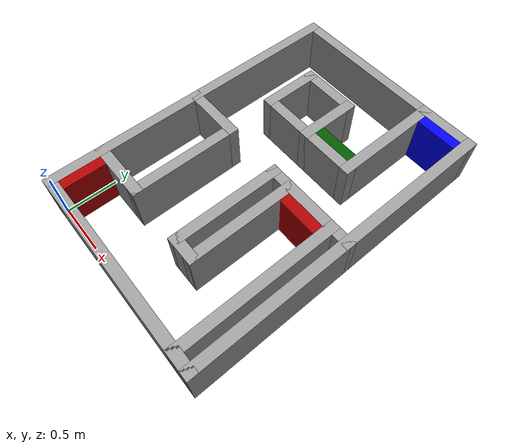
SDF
<?xml version='1.0'?>
<sdf version='1.6'>
  <model name='Bot_Map_1'>
    <pose frame=''>1 1.5 0 0 -0 0</pose>
    <link name='Wall_44'>
      <collision name='Wall_44_Collision'>
        <geometry>
          <box>
            <size>1.6 0.1 0.5</size>
          </box>
        </geometry>
        <pose frame=''>0 0 0.25 0 -0 0</pose>
      </collision>
      <visual name='Wall_44_Visual'>
        <pose frame=''>0 0 0.25 0 -0 0</pose>
        <geometry>
          <box>
            <size>1.6 0.1 0.5</size>
          </box>
        </geometry>
        <material>
          <script>
            <uri>file://media/materials/scripts/gazebo.material</uri>
            <name>Gazebo/Grey</name>
          </script>
          <ambient>0 0 0 1</ambient>
        </material>
        <meta>
          <layer>0</layer>
        </meta>
      </visual>
      <pose frame=''>-1 -0.75 0 0 -0 1.5708</pose>
    </link>
    <link name='Wall_50'>
      <collision name='Wall_50_Collision'>
        <geometry>
          <box>
            <size>0.625 0.1 0.5</size>
          </box>
        </geometry>
        <pose frame=''>0 0 0.25 0 -0 0</pose>
      </collision>
      <visual name='Wall_50_Visual'>
        <pose frame=''>0 0 0.25 0 -0 0</pose>
        <geometry>
          <box>
            <size>0.625 0.1 0.5</size>
          </box>
        </geometry>
        <material>
          <script>
            <uri>file://media/materials/scripts/gazebo.material</uri>
            <name>Gazebo/Grey</name>
          </script>
          <ambient>0 0 0 1</ambient>
        </material>
        <meta>
          <layer>0</layer>
        </meta>
      </visual>
      <pose frame=''>-0.7375 -1 0 0 -0 0</pose>
    </link>
    <link name='Wall_54'>
      <collision name='Wall_54_Collision'>
        <geometry>
          <box>
            <size>0.625 0.1 0.5</size>
          </box>
        </geometry>
        <pose frame=''>0 0 0.25 0 -0 0</pose>
      </collision>
      <visual name='Wall_54_Visual'>
        <pose frame=''>0 0 0.25 0 -0 0</pose>
        <geometry>
          <box>
            <size>0.625 0.1 0.5</size>
          </box>
        </geometry>
        <material>
          <script>
            <uri>file://media/materials/scripts/gazebo.material</uri>
            <name>Gazebo/Grey</name>
          </script>
          <ambient>0 0 0 1</ambient>
        </material>
        <meta>
          <layer>0</layer>
        </meta>
      </visual>
      <pose frame=''>-0.7375 0 0 0 -0 0</pose>
    </link>
    <link name='Wall_56'>
      <collision name='Wall_56_Collision'>
        <geometry>
          <box>
            <size>1.1 0.1 0.5</size>
          </box>
        </geometry>
        <pose frame=''>0 0 0.25 0 -0 0</pose>
      </collision>
      <visual name='Wall_56_Visual'>
        <pose frame=''>0 0 0.25 0 -0 0</pose>
        <geometry>
          <box>
            <size>1.1 0.1 0.5</size>
          </box>
        </geometry>
        <material>
          <script>
            <uri>file://media/materials/scripts/gazebo.material</uri>
            <name>Gazebo/Grey</name>
          </script>
          <ambient>0 0 0 1</ambient>
        </material>
        <meta>
          <layer>0</layer>
        </meta>
      </visual>
      <pose frame=''>-0.475 -0.5 0 0 -0 1.5708</pose>
    </link>
    <link name='Wall_58'>
      <collision name='Wall_58_Collision'>
        <geometry>
          <box>
            <size>2 0.1 0.5</size>
          </box>
        </geometry>
        <pose frame=''>0 0 0.25 0 -0 0</pose>
      </collision>
      <visual name='Wall_58_Visual'>
        <pose frame=''>0 0 0.25 0 -0 0</pose>
        <geometry>
          <box>
            <size>2 0.1 0.5</size>
          </box>
        </geometry>
        <material>
          <script>
            <uri>file://media/materials/scripts/gazebo.material</uri>
            <name>Gazebo/Grey</name>
          </script>
          <ambient>0 0 0 1</ambient>
        </material>
        <meta>
          <layer>0</layer>
        </meta>
      </visual>
      <pose frame=''>0.05 -1.5 0 0 -0 0</pose>
    </link>
    <link name='Wall_60'>
      <collision name='Wall_60_Collision'>
        <geometry>
          <box>
            <size>3.1 0.1 0.5</size>
          </box>
        </geometry>
        <pose frame=''>0 0 0.25 0 -0 0</pose>
      </collision>
      <visual name='Wall_60_Visual'>
        <pose frame=''>0 0 0.25 0 -0 0</pose>
        <geometry>
          <box>
            <size>3.1 0.1 0.5</size>
          </box>
        </geometry>
        <material>
          <script>
            <uri>file://media/materials/scripts/gazebo.material</uri>
            <name>Gazebo/Grey</name>
          </script>
          <ambient>0 0 0 1</ambient>
        </material>
        <meta>
          <layer>0</layer>
        </meta>
      </visual>
      <pose frame=''>1 0 0 0 -0 1.5708</pose>
    </link>
    <link name='Wall_62'>
      <collision name='Wall_62_Collision'>
        <geometry>
          <box>
            <size>1.6 0.1 0.5</size>
          </box>
        </geometry>
        <pose frame=''>0 0 0.25 0 -0 0</pose>
      </collision>
      <visual name='Wall_62_Visual'>
        <pose frame=''>0 0 0.25 0 -0 0</pose>
        <geometry>
          <box>
            <size>1.6 0.1 0.5</size>
          </box>
        </geometry>
        <material>
          <script>
            <uri>file://media/materials/scripts/gazebo.material</uri>
            <name>Gazebo/Grey</name>
          </script>
          <ambient>0 0 0 1</ambient>
        </material>
        <meta>
          <layer>0</layer>
        </meta>
      </visual>
      <pose frame=''>-1 0.75 0 0 -0 1.5708</pose>
    </link>
    <link name='Wall_64'>
      <collision name='Wall_64_Collision'>
        <geometry>
          <box>
            <size>2.1 0.1 0.5</size>
          </box>
        </geometry>
        <pose frame=''>0 0 0.25 0 -0 0</pose>
      </collision>
      <visual name='Wall_64_Visual'>
        <pose frame=''>0 0 0.25 0 -0 0</pose>
        <geometry>
          <box>
            <size>2.1 0.1 0.5</size>
          </box>
        </geometry>
        <material>
          <script>
            <uri>file://media/materials/scripts/gazebo.material</uri>
            <name>Gazebo/Grey</name>
          </script>
          <ambient>0 0 0 1</ambient>
        </material>
        <meta>
          <layer>0</layer>
        </meta>
      </visual>
      <pose frame=''>0 1.5 0 0 -0 0</pose>
    </link>
    <link name='Wall_66'>
      <collision name='Wall_66_Collision'>
        <geometry>
          <box>
            <size>1.1 0.1 0.5</size>
          </box>
        </geometry>
        <pose frame=''>0 0 0.25 0 -0 0</pose>
      </collision>
      <visual name='Wall_66_Visual'>
        <pose frame=''>0 0 0.25 0 -0 0</pose>
        <geometry>
          <box>
            <size>1.1 0.1 0.5</size>
          </box>
        </geometry>
        <material>
          <script>
            <uri>file://media/materials/scripts/gazebo.material</uri>
            <name>Gazebo/Grey</name>
          </script>
          <ambient>0 0 0 1</ambient>
        </material>
        <meta>
          <layer>0</layer>
        </meta>
      </visual>
      <pose frame=''>0.5 1 0 0 0 -1.5708</pose>
    </link>
    <link name='Wall_68'>
      <collision name='Wall_68_Collision'>
        <geometry>
          <box>
            <size>1.1 0.1 0.5</size>
          </box>
        </geometry>
        <pose frame=''>0 0 0.25 0 -0 0</pose>
      </collision>
      <visual name='Wall_68_Visual'>
        <pose frame=''>0 0 0.25 0 -0 0</pose>
        <geometry>
          <box>
            <size>1.1 0.1 0.5</size>
          </box>
        </geometry>
        <material>
          <script>
            <uri>file://media/materials/scripts/gazebo.material</uri>
            <name>Gazebo/Grey</name>
          </script>
          <ambient>0 0 0 1</ambient>
        </material>
        <meta>
          <layer>0</layer>
        </meta>
      </visual>
      <pose frame=''>0 0.5 0 0 -0 0</pose>
    </link>
    <link name='Wall_70'>
      <collision name='Wall_70_Collision'>
        <geometry>
          <box>
            <size>0.6 0.1 0.5</size>
          </box>
        </geometry>
        <pose frame=''>0 0 0.25 0 -0 0</pose>
      </collision>
      <visual name='Wall_70_Visual'>
        <pose frame=''>0 0 0.25 0 -0 0</pose>
        <geometry>
          <box>
            <size>0.6 0.1 0.5</size>
          </box>
        </geometry>
        <material>
          <script>
            <uri>file://media/materials/scripts/gazebo.material</uri>
            <name>Gazebo/Grey</name>
          </script>
          <ambient>0 0 0 1</ambient>
        </material>
        <meta>
          <layer>0</layer>
        </meta>
      </visual>
      <pose frame=''>-0.5 0.75 0 0 -0 1.5708</pose>
    </link>
    <link name='Wall_73'>
      <collision name='Wall_73_Collision'>
        <geometry>
          <box>
            <size>0.6 0.1 0.5</size>
          </box>
        </geometry>
        <pose frame=''>0 0 0.25 0 -0 0</pose>
      </collision>
      <visual name='Wall_73_Visual'>
        <pose frame=''>0 0 0.25 0 -0 0</pose>
        <geometry>
          <box>
            <size>0.6 0.1 0.5</size>
          </box>
        </geometry>
        <material>
          <script>
            <uri>file://media/materials/scripts/gazebo.material</uri>
            <name>Gazebo/Grey</name>
          </script>
          <ambient>0 0 0 1</ambient>
        </material>
        <meta>
          <layer>0</layer>
        </meta>
      </visual>
      <pose frame=''>-0.25 1 0 0 -0 0</pose>
    </link>
    <link name='Wall_75'>
      <collision name='Wall_75_Collision'>
        <geometry>
          <box>
            <size>0.6 0.1 0.5</size>
          </box>
        </geometry>
        <pose frame=''>0 0 0.25 0 -0 0</pose>
      </collision>
      <visual name='Wall_75_Visual'>
        <pose frame=''>0 0 0.25 0 -0 0</pose>
        <geometry>
          <box>
            <size>0.6 0.1 0.5</size>
          </box>
        </geometry>
        <material>
          <script>
            <uri>file://media/materials/scripts/gazebo.material</uri>
            <name>Gazebo/Grey</name>
          </script>
          <ambient>0 0 0 1</ambient>
        </material>
        <meta>
          <layer>0</layer>
        </meta>
      </visual>
      <pose frame=''>0 0.75 0 0 -0 1.5708</pose>
    </link>
    <link name='Wall_77'>
      <collision name='Wall_77_Collision'>
        <geometry>
          <box>
            <size>0.4 0.1 0.5</size>
          </box>
        </geometry>
        <pose frame=''>0 0 0.25 0 -0 0</pose>
      </collision>
      <visual name='Wall_77_Visual'>
        <pose frame=''>0 0 0.25 0 -0 0</pose>
        <geometry>
          <box>
            <size>0.4 0.1 0.5</size>
          </box>
        </geometry>
        <material>
          <script>
            <uri>file://media/materials/scripts/gazebo.material</uri>
            <name>Gazebo/Grey</name>
          </script>
          <ambient>0 0.333333 0 1</ambient>
        </material>
        <meta>
          <layer>0</layer>
        </meta>
      </visual>
      <pose frame=''>0.25 0.6 0 0 -0 0</pose>
    </link>
    <link name='Wall_79'>
      <collision name='Wall_79_Collision'>
        <geometry>
          <box>
            <size>0.975 0.1 0.5</size>
          </box>
        </geometry>
        <pose frame=''>0 0 0.25 0 -0 0</pose>
      </collision>
      <visual name='Wall_79_Visual'>
        <pose frame=''>0 0 0.25 0 -0 0</pose>
        <geometry>
          <box>
            <size>0.975 0.1 0.5</size>
          </box>
        </geometry>
        <material>
          <script>
            <uri>file://media/materials/scripts/gazebo.material</uri>
            <name>Gazebo/Grey</name>
          </script>
          <ambient>0 0 0 1</ambient>
        </material>
        <meta>
          <layer>0</layer>
        </meta>
      </visual>
      <pose frame=''>0.5625 0 0 0 -0 0</pose>
    </link>
    <link name='Wall_81'>
      <collision name='Wall_81_Collision'>
        <geometry>
          <box>
            <size>1.1 0.1 0.5</size>
          </box>
        </geometry>
        <pose frame=''>0 0 0.25 0 -0 0</pose>
      </collision>
      <visual name='Wall_81_Visual'>
        <pose frame=''>0 0 0.25 0 -0 0</pose>
        <geometry>
          <box>
            <size>1.1 0.1 0.5</size>
          </box>
        </geometry>
        <material>
          <script>
            <uri>file://media/materials/scripts/gazebo.material</uri>
            <name>Gazebo/Grey</name>
          </script>
          <ambient>0 0 0 1</ambient>
        </material>
        <meta>
          <layer>0</layer>
        </meta>
      </visual>
      <pose frame=''>0.125 -0.5 0 0 -0 1.5708</pose>
    </link>
    <link name='Wall_83'>
      <collision name='Wall_83_Collision'>
        <geometry>
          <box>
            <size>0.3 0.1 0.5</size>
          </box>
        </geometry>
        <pose frame=''>0 0 0.25 0 -0 0</pose>
      </collision>
      <visual name='Wall_83_Visual'>
        <pose frame=''>0 0 0.25 0 -0 0</pose>
        <geometry>
          <box>
            <size>0.3 0.1 0.5</size>
          </box>
        </geometry>
        <material>
          <script>
            <uri>file://media/materials/scripts/gazebo.material</uri>
            <name>Gazebo/Grey</name>
          </script>
          <ambient>0 0 0 1</ambient>
        </material>
        <meta>
          <layer>0</layer>
        </meta>
      </visual>
      <pose frame=''>0.225 -1 0 0 -0 0</pose>
    </link>
    <link name='Wall_87'>
      <collision name='Wall_87_Collision'>
        <geometry>
          <box>
            <size>1.1 0.1 0.5</size>
          </box>
        </geometry>
        <pose frame=''>0 0 0.25 0 -0 0</pose>
      </collision>
      <visual name='Wall_87_Visual'>
        <pose frame=''>0 0 0.25 0 -0 0</pose>
        <geometry>
          <box>
            <size>1.1 0.1 0.5</size>
          </box>
        </geometry>
        <material>
          <script>
            <uri>file://media/materials/scripts/gazebo.material</uri>
            <name>Gazebo/Grey</name>
          </script>
          <ambient>0 0 0 1</ambient>
        </material>
        <meta>
          <layer>0</layer>
        </meta>
      </visual>
      <pose frame=''>0.325 -0.5 0 0 -0 1.5708</pose>
    </link>
    <link name='Wall_90'>
      <collision name='Wall_90_Collision'>
        <geometry>
          <box>
            <size>0.4 0.1 0.5</size>
          </box>
        </geometry>
        <pose frame=''>0 0 0.25 0 -0 0</pose>
      </collision>
      <visual name='Wall_90_Visual'>
        <pose frame=''>0 0 0.25 0 -0 0</pose>
        <geometry>
          <box>
            <size>0.4 0.1 0.5</size>
          </box>
        </geometry>
        <material>
          <script>
            <uri>file://media/materials/scripts/gazebo.material</uri>
            <name>Gazebo/Grey</name>
          </script>
          <ambient>0.666667 0 0 1</ambient>
        </material>
        <meta>
          <layer>0</layer>
        </meta>
      </visual>
      <pose frame=''>-0.9 -1.25 0 0 -0 1.5708</pose>
    </link>
    <link name='Wall_92'>
      <collision name='Wall_92_Collision'>
        <geometry>
          <box>
            <size>0.4 0.1 0.5</size>
          </box>
        </geometry>
        <pose frame=''>0 0 0.25 0 -0 0</pose>
      </collision>
      <visual name='Wall_92_Visual'>
        <pose frame=''>0 0 0.25 0 -0 0</pose>
        <geometry>
          <box>
            <size>0.4 0.1 0.5</size>
          </box>
        </geometry>
        <material>
          <script>
            <uri>file://media/materials/scripts/gazebo.material</uri>
            <name>Gazebo/Grey</name>
          </script>
          <ambient>0.666667 0 0 1</ambient>
        </material>
        <meta>
          <layer>0</layer>
        </meta>
      </visual>
      <pose frame=''>0.575 -0.1 0 0 -0 0</pose>
    </link>
    <link name='Wall_94'>
      <collision name='Wall_94_Collision'>
        <geometry>
          <box>
            <size>1.6 0.1 0.5</size>
          </box>
        </geometry>
        <pose frame=''>0 0 0.25 0 -0 0</pose>
      </collision>
      <visual name='Wall_94_Visual'>
        <pose frame=''>0 0 0.25 0 -0 0</pose>
        <geometry>
          <box>
            <size>1.6 0.1 0.5</size>
          </box>
        </geometry>
        <material>
          <script>
            <uri>file://media/materials/scripts/gazebo.material</uri>
            <name>Gazebo/Grey</name>
          </script>
          <ambient>0 0 0 1</ambient>
        </material>
        <meta>
          <layer>0</layer>
        </meta>
      </visual>
      <pose frame=''>0.825 -0.75 0 0 -0 1.5708</pose>
    </link>
    <link name='Wall_96'>
      <collision name='Wall_96_Collision'>
        <geometry>
          <box>
            <size>0.4 0.1 0.5</size>
          </box>
        </geometry>
        <pose frame=''>0 0 0.25 0 -0 0</pose>
      </collision>
      <visual name='Wall_96_Visual'>
        <pose frame=''>0 0 0.25 0 -0 0</pose>
        <geometry>
          <box>
            <size>0.4 0.1 0.5</size>
          </box>
        </geometry>
        <material>
          <script>
            <uri>file://media/materials/scripts/gazebo.material</uri>
            <name>Gazebo/Grey</name>
          </script>
          <ambient>0 0 1 1</ambient>
        </material>
        <meta>
          <layer>0</layer>
        </meta>
      </visual>
      <pose frame=''>0.75 1.4 0 0 -0 0</pose>
    </link>
    <static>1</static>
  </model>
</sdf>
